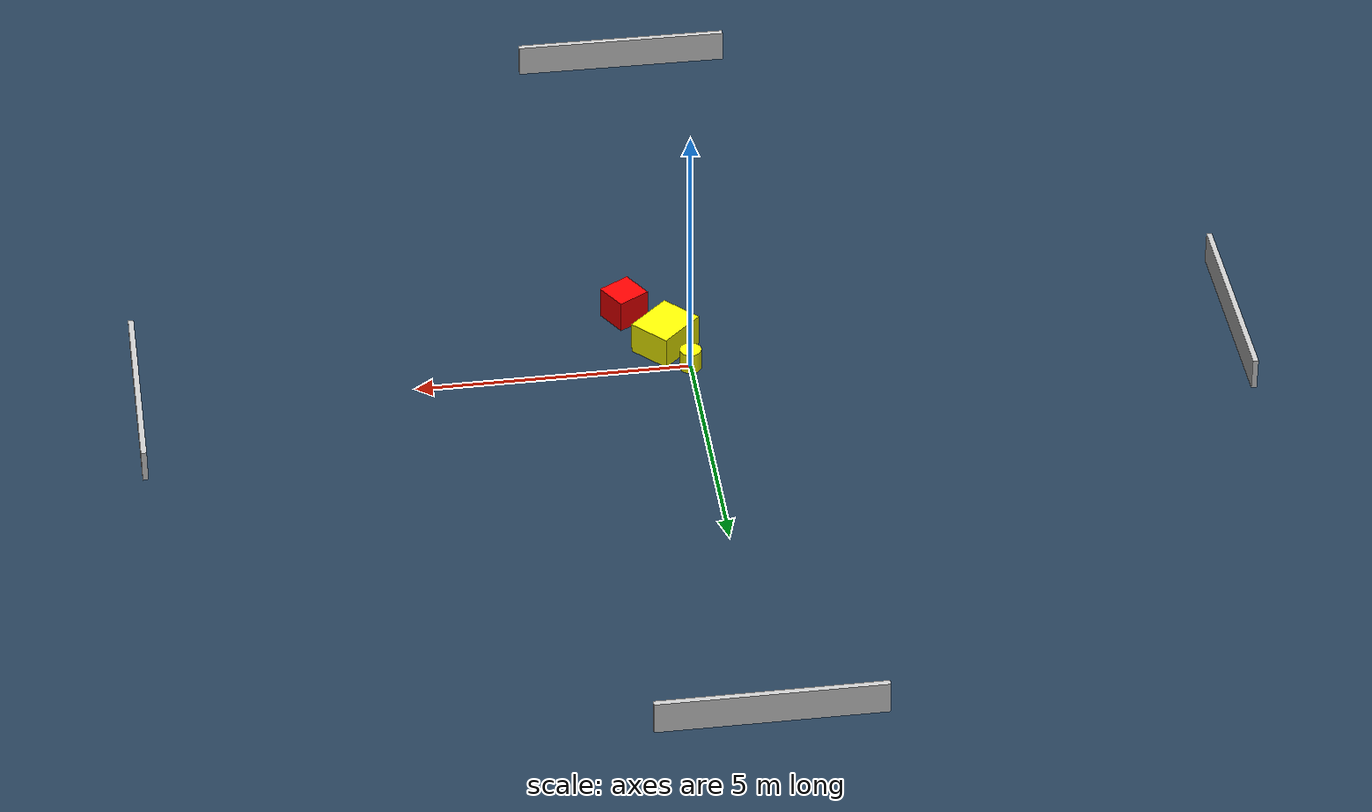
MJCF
<?xml version="1.0" ?>
<mujoco model="generated_environment">
  <option timestep="0.01" integrator="RK4" cone="elliptic"/>
  <default>
    <geom density="1"/>
  </default>
  <asset>
    <texture builtin="gradient" height="3072" name="skybox" rgb1="0.3 0.5 0.7" rgb2="0 0 0" type="skybox" width="512"/>
    <texture builtin="checker" height="300" name="groundplane" rgb1="0.2 0.3 0.4" rgb2="0.1 0.2 0.3" type="2d" width="300"/>
    <material name="groundplane" reflectance="0.2" texrepeat="5 5" texture="groundplane"/>
  </asset>
  <worldbody>
    <light dir="0 0 -1" directional="true" pos="0 0 1.5"/>
    <geom condim="3" friction="0.5 0.005 0.001" material="groundplane" name="floor" pos="0 0 0" size="0 0 0.05" type="plane"/>
    <body name="walls">
      <geom name="wall_1" condim="4" pos="-10.0 0.0 0.3" rgba="0.800000011920929 0.800000011920929 0.800000011920929 1.0" size="0.05 2.0 0.3" type="box"/>
      <geom name="wall_2" condim="4" pos="10.0 0.0 0.3" rgba="0.800000011920929 0.800000011920929 0.800000011920929 1.0" size="0.05 2.0 0.3" type="box"/>
      <geom name="wall_3" condim="4" pos="0.0 -10.0 0.3" rgba="0.800000011920929 0.800000011920929 0.800000011920929 1.0" size="2.0 0.05 0.3" type="box"/>
      <geom name="wall_4" condim="4" pos="0.0 10.0 0.3" rgba="0.800000011920929 0.800000011920929 0.800000011920929 1.0" size="2.0 0.05 0.3" type="box"/>
    </body>
    <body name="robot">
      <joint name="joint_x" type="slide" pos="0 0 0" axis="1 0 0"/>
      <joint name="joint_y" type="slide" pos="0 0 0" axis="0 1 0"/>
      <geom name="robot" type="cylinder" pos="0.0 0.0 0.2" size="0.2 0.2 0.0" mass="5.0" friction="1.0 0.005 0.0001" condim="4" rgba="1.0 1.0 0.0 1.0"/>
    </body>
    <body name="obstacle_1_movable">
      <geom name="obstacle_1_movable" condim="4" pos="0.37094856514542046 -0.67074235198963 0.3" euler="0 0 313.7069271657416" friction="0.0 0.005 0.001" rgba="1.0 1.0 0.0 1.0" size="0.40363465252841824 0.478459491044718 0.3" type="box" mass="0.1"/>
      <joint type="free"/>
    </body>
    <body name="obstacle_2_static">
      <geom name="obstacle_2_static" condim="4" pos="0.9980497946182758 -1.6969984981601383 0.3" euler="0 0 120.85367945664068" friction="0.0 0.005 0.001" rgba="1.0 0.0 0.0 1.0" size="0.3068909962894314 0.31206159138060824 0.3" type="box"/>
    </body>
  </worldbody>
  <actuator>
    <motor name="actuator_x" joint="joint_x" gear="1" ctrlrange="-1 1"/>
    <motor name="actuator_y" joint="joint_y" gear="1" ctrlrange="-1 1"/>
  </actuator>
</mujoco>
